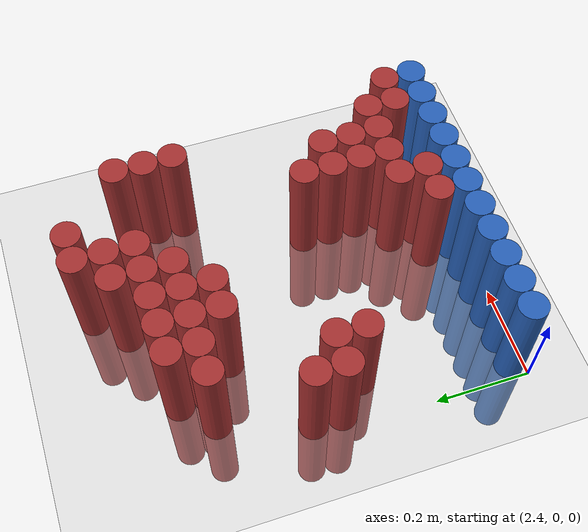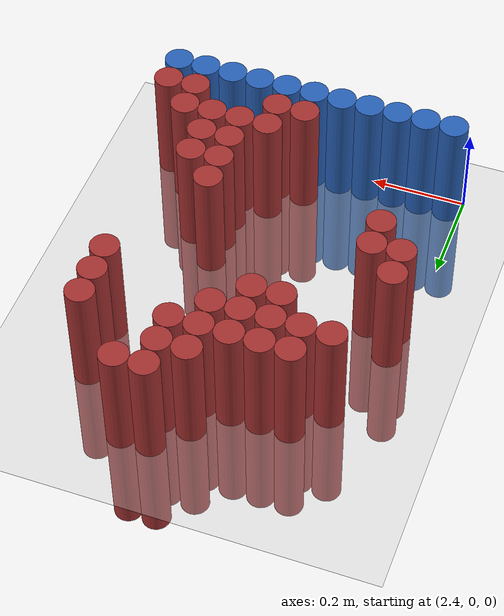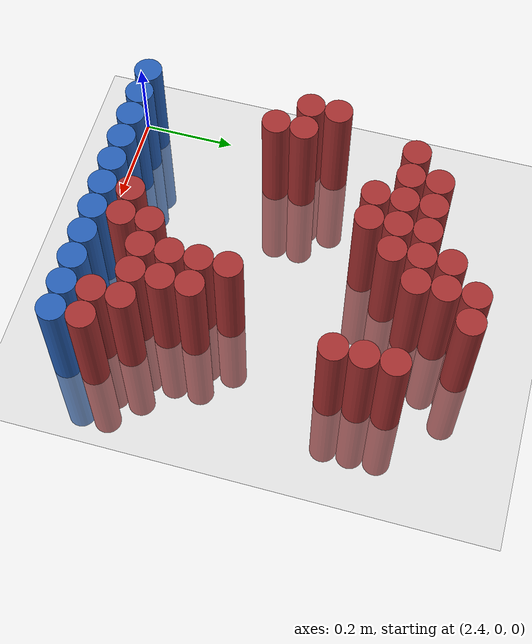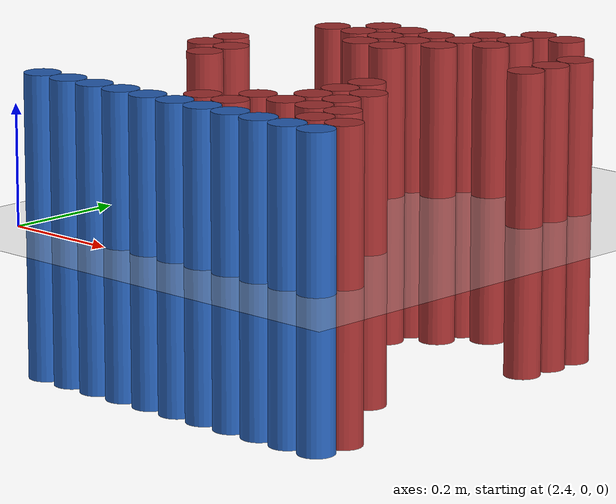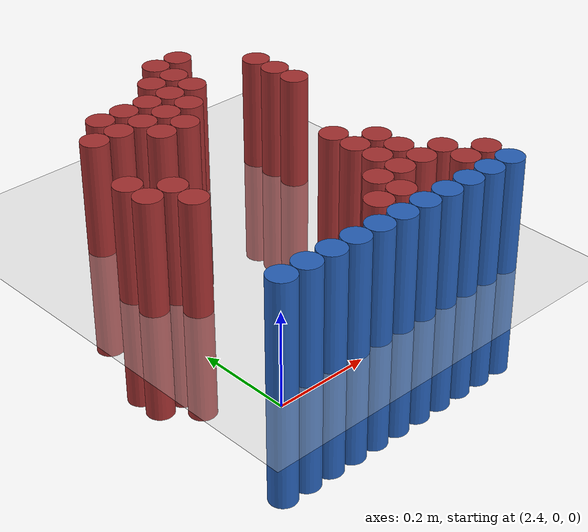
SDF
<sdf version="1.6">
 <world name="default">
  <model name="ground_plane">
   <static>1</static>
   <link name="link">
    <collision name="collision">
     <geometry><plane><normal>0 0 1</normal><size>100 100</size></plane></geometry>
     <surface><friction><ode><mu>100</mu><mu2>50</mu2></ode></friction></surface>
    </collision>
    <visual name="visual">
     <cast_shadows>0</cast_shadows>
     <geometry><plane><normal>0 0 1</normal><size>100 100</size></plane></geometry>
     <material>
      <script><uri>file://media/materials/scripts/gazebo.material</uri><name>Gazebo/Grey</name></script>
     </material>
    </visual>
   </link>
  </model>
  <model name="unit_cylinder_216">
   <static>1</static>
   <pose>2.790000 0.810000 0.000000 0.000000 0.000000 0.000000</pose>
   <link name="link">
    <inertial>
     <mass>1</mass>
     <inertia><ixx>0.145833</ixx><ixy>0</ixy><ixz>0</ixz><iyy>0.145833</iyy><iyz>0</iyz><izz>0.125</izz></inertia>
    </inertial>
    <collision name="collision">
     <geometry><cylinder><radius>0.030000</radius><length>0.5</length></cylinder></geometry>
    </collision>
    <visual name="visual">
     <geometry><cylinder><radius>0.030000</radius><length>0.5</length></cylinder></geometry>
     <material>
      <ambient>0.648000 0.192000 0.192000 1</ambient>
      <diffuse>0.648000 0.192000 0.192000 1</diffuse>
     </material>
     <material>
      <script><name>Gazebo/Grey</name><uri>file://media/materials/scripts/gazebo.material</uri></script>
     </material>
    </visual>
   </link>
  </model>
  <model name="unit_cylinder_217">
   <static>1</static>
   <pose>2.850000 0.810000 0.000000 0.000000 0.000000 0.000000</pose>
   <link name="link">
    <inertial>
     <mass>1</mass>
     <inertia><ixx>0.145833</ixx><ixy>0</ixy><ixz>0</ixz><iyy>0.145833</iyy><iyz>0</iyz><izz>0.125</izz></inertia>
    </inertial>
    <collision name="collision">
     <geometry><cylinder><radius>0.030000</radius><length>0.5</length></cylinder></geometry>
    </collision>
    <visual name="visual">
     <geometry><cylinder><radius>0.030000</radius><length>0.5</length></cylinder></geometry>
     <material>
      <ambient>0.648000 0.192000 0.192000 1</ambient>
      <diffuse>0.648000 0.192000 0.192000 1</diffuse>
     </material>
     <material>
      <script><name>Gazebo/Grey</name><uri>file://media/materials/scripts/gazebo.material</uri></script>
     </material>
    </visual>
   </link>
  </model>
  <model name="unit_cylinder_223">
   <static>1</static>
   <pose>2.730000 0.750000 0.000000 0.000000 0.000000 0.000000</pose>
   <link name="link">
    <inertial>
     <mass>1</mass>
     <inertia><ixx>0.145833</ixx><ixy>0</ixy><ixz>0</ixz><iyy>0.145833</iyy><iyz>0</iyz><izz>0.125</izz></inertia>
    </inertial>
    <collision name="collision">
     <geometry><cylinder><radius>0.030000</radius><length>0.5</length></cylinder></geometry>
    </collision>
    <visual name="visual">
     <geometry><cylinder><radius>0.030000</radius><length>0.5</length></cylinder></geometry>
     <material>
      <ambient>0.648000 0.192000 0.192000 1</ambient>
      <diffuse>0.648000 0.192000 0.192000 1</diffuse>
     </material>
     <material>
      <script><name>Gazebo/Grey</name><uri>file://media/materials/scripts/gazebo.material</uri></script>
     </material>
    </visual>
   </link>
  </model>
  <model name="unit_cylinder_224">
   <static>1</static>
   <pose>2.790000 0.750000 0.000000 0.000000 0.000000 0.000000</pose>
   <link name="link">
    <inertial>
     <mass>1</mass>
     <inertia><ixx>0.145833</ixx><ixy>0</ixy><ixz>0</ixz><iyy>0.145833</iyy><iyz>0</iyz><izz>0.125</izz></inertia>
    </inertial>
    <collision name="collision">
     <geometry><cylinder><radius>0.030000</radius><length>0.5</length></cylinder></geometry>
    </collision>
    <visual name="visual">
     <geometry><cylinder><radius>0.030000</radius><length>0.5</length></cylinder></geometry>
     <material>
      <ambient>0.648000 0.192000 0.192000 1</ambient>
      <diffuse>0.648000 0.192000 0.192000 1</diffuse>
     </material>
     <material>
      <script><name>Gazebo/Grey</name><uri>file://media/materials/scripts/gazebo.material</uri></script>
     </material>
    </visual>
   </link>
  </model>
  <model name="unit_cylinder_231">
   <static>1</static>
   <pose>2.550000 0.690000 0.000000 0.000000 0.000000 0.000000</pose>
   <link name="link">
    <inertial>
     <mass>1</mass>
     <inertia><ixx>0.145833</ixx><ixy>0</ixy><ixz>0</ixz><iyy>0.145833</iyy><iyz>0</iyz><izz>0.125</izz></inertia>
    </inertial>
    <collision name="collision">
     <geometry><cylinder><radius>0.030000</radius><length>0.5</length></cylinder></geometry>
    </collision>
    <visual name="visual">
     <geometry><cylinder><radius>0.030000</radius><length>0.5</length></cylinder></geometry>
     <material>
      <ambient>0.648000 0.192000 0.192000 1</ambient>
      <diffuse>0.648000 0.192000 0.192000 1</diffuse>
     </material>
     <material>
      <script><name>Gazebo/Grey</name><uri>file://media/materials/scripts/gazebo.material</uri></script>
     </material>
    </visual>
   </link>
  </model>
  <model name="unit_cylinder_232">
   <static>1</static>
   <pose>2.610000 0.690000 0.000000 0.000000 0.000000 0.000000</pose>
   <link name="link">
    <inertial>
     <mass>1</mass>
     <inertia><ixx>0.145833</ixx><ixy>0</ixy><ixz>0</ixz><iyy>0.145833</iyy><iyz>0</iyz><izz>0.125</izz></inertia>
    </inertial>
    <collision name="collision">
     <geometry><cylinder><radius>0.030000</radius><length>0.5</length></cylinder></geometry>
    </collision>
    <visual name="visual">
     <geometry><cylinder><radius>0.030000</radius><length>0.5</length></cylinder></geometry>
     <material>
      <ambient>0.648000 0.192000 0.192000 1</ambient>
      <diffuse>0.648000 0.192000 0.192000 1</diffuse>
     </material>
     <material>
      <script><name>Gazebo/Grey</name><uri>file://media/materials/scripts/gazebo.material</uri></script>
     </material>
    </visual>
   </link>
  </model>
  <model name="unit_cylinder_233">
   <static>1</static>
   <pose>2.670000 0.690000 0.000000 0.000000 0.000000 0.000000</pose>
   <link name="link">
    <inertial>
     <mass>1</mass>
     <inertia><ixx>0.145833</ixx><ixy>0</ixy><ixz>0</ixz><iyy>0.145833</iyy><iyz>0</iyz><izz>0.125</izz></inertia>
    </inertial>
    <collision name="collision">
     <geometry><cylinder><radius>0.030000</radius><length>0.5</length></cylinder></geometry>
    </collision>
    <visual name="visual">
     <geometry><cylinder><radius>0.030000</radius><length>0.5</length></cylinder></geometry>
     <material>
      <ambient>0.648000 0.192000 0.192000 1</ambient>
      <diffuse>0.648000 0.192000 0.192000 1</diffuse>
     </material>
     <material>
      <script><name>Gazebo/Grey</name><uri>file://media/materials/scripts/gazebo.material</uri></script>
     </material>
    </visual>
   </link>
  </model>
  <model name="unit_cylinder_234">
   <static>1</static>
   <pose>2.730000 0.690000 0.000000 0.000000 0.000000 0.000000</pose>
   <link name="link">
    <inertial>
     <mass>1</mass>
     <inertia><ixx>0.145833</ixx><ixy>0</ixy><ixz>0</ixz><iyy>0.145833</iyy><iyz>0</iyz><izz>0.125</izz></inertia>
    </inertial>
    <collision name="collision">
     <geometry><cylinder><radius>0.030000</radius><length>0.5</length></cylinder></geometry>
    </collision>
    <visual name="visual">
     <geometry><cylinder><radius>0.030000</radius><length>0.5</length></cylinder></geometry>
     <material>
      <ambient>0.648000 0.192000 0.192000 1</ambient>
      <diffuse>0.648000 0.192000 0.192000 1</diffuse>
     </material>
     <material>
      <script><name>Gazebo/Grey</name><uri>file://media/materials/scripts/gazebo.material</uri></script>
     </material>
    </visual>
   </link>
  </model>
  <model name="unit_cylinder_235">
   <static>1</static>
   <pose>2.790000 0.690000 0.000000 0.000000 0.000000 0.000000</pose>
   <link name="link">
    <inertial>
     <mass>1</mass>
     <inertia><ixx>0.145833</ixx><ixy>0</ixy><ixz>0</ixz><iyy>0.145833</iyy><iyz>0</iyz><izz>0.125</izz></inertia>
    </inertial>
    <collision name="collision">
     <geometry><cylinder><radius>0.030000</radius><length>0.5</length></cylinder></geometry>
    </collision>
    <visual name="visual">
     <geometry><cylinder><radius>0.030000</radius><length>0.5</length></cylinder></geometry>
     <material>
      <ambient>0.648000 0.192000 0.192000 1</ambient>
      <diffuse>0.648000 0.192000 0.192000 1</diffuse>
     </material>
     <material>
      <script><name>Gazebo/Grey</name><uri>file://media/materials/scripts/gazebo.material</uri></script>
     </material>
    </visual>
   </link>
  </model>
  <model name="unit_cylinder_236">
   <static>1</static>
   <pose>2.970000 0.690000 0.000000 0.000000 0.000000 0.000000</pose>
   <link name="link">
    <inertial>
     <mass>1</mass>
     <inertia><ixx>0.145833</ixx><ixy>0</ixy><ixz>0</ixz><iyy>0.145833</iyy><iyz>0</iyz><izz>0.125</izz></inertia>
    </inertial>
    <collision name="collision">
     <geometry><cylinder><radius>0.030000</radius><length>0.5</length></cylinder></geometry>
    </collision>
    <visual name="visual">
     <geometry><cylinder><radius>0.030000</radius><length>0.5</length></cylinder></geometry>
     <material>
      <ambient>0.648000 0.192000 0.192000 1</ambient>
      <diffuse>0.648000 0.192000 0.192000 1</diffuse>
     </material>
     <material>
      <script><name>Gazebo/Grey</name><uri>file://media/materials/scripts/gazebo.material</uri></script>
     </material>
    </visual>
   </link>
  </model>
  <model name="unit_cylinder_239">
   <static>1</static>
   <pose>2.490000 0.630000 0.000000 0.000000 0.000000 0.000000</pose>
   <link name="link">
    <inertial>
     <mass>1</mass>
     <inertia><ixx>0.145833</ixx><ixy>0</ixy><ixz>0</ixz><iyy>0.145833</iyy><iyz>0</iyz><izz>0.125</izz></inertia>
    </inertial>
    <collision name="collision">
     <geometry><cylinder><radius>0.030000</radius><length>0.5</length></cylinder></geometry>
    </collision>
    <visual name="visual">
     <geometry><cylinder><radius>0.030000</radius><length>0.5</length></cylinder></geometry>
     <material>
      <ambient>0.648000 0.192000 0.192000 1</ambient>
      <diffuse>0.648000 0.192000 0.192000 1</diffuse>
     </material>
     <material>
      <script><name>Gazebo/Grey</name><uri>file://media/materials/scripts/gazebo.material</uri></script>
     </material>
    </visual>
   </link>
  </model>
  <model name="unit_cylinder_240">
   <static>1</static>
   <pose>2.550000 0.630000 0.000000 0.000000 0.000000 0.000000</pose>
   <link name="link">
    <inertial>
     <mass>1</mass>
     <inertia><ixx>0.145833</ixx><ixy>0</ixy><ixz>0</ixz><iyy>0.145833</iyy><iyz>0</iyz><izz>0.125</izz></inertia>
    </inertial>
    <collision name="collision">
     <geometry><cylinder><radius>0.030000</radius><length>0.5</length></cylinder></geometry>
    </collision>
    <visual name="visual">
     <geometry><cylinder><radius>0.030000</radius><length>0.5</length></cylinder></geometry>
     <material>
      <ambient>0.648000 0.192000 0.192000 1</ambient>
      <diffuse>0.648000 0.192000 0.192000 1</diffuse>
     </material>
     <material>
      <script><name>Gazebo/Grey</name><uri>file://media/materials/scripts/gazebo.material</uri></script>
     </material>
    </visual>
   </link>
  </model>
  <model name="unit_cylinder_241">
   <static>1</static>
   <pose>2.610000 0.630000 0.000000 0.000000 0.000000 0.000000</pose>
   <link name="link">
    <inertial>
     <mass>1</mass>
     <inertia><ixx>0.145833</ixx><ixy>0</ixy><ixz>0</ixz><iyy>0.145833</iyy><iyz>0</iyz><izz>0.125</izz></inertia>
    </inertial>
    <collision name="collision">
     <geometry><cylinder><radius>0.030000</radius><length>0.5</length></cylinder></geometry>
    </collision>
    <visual name="visual">
     <geometry><cylinder><radius>0.030000</radius><length>0.5</length></cylinder></geometry>
     <material>
      <ambient>0.648000 0.192000 0.192000 1</ambient>
      <diffuse>0.648000 0.192000 0.192000 1</diffuse>
     </material>
     <material>
      <script><name>Gazebo/Grey</name><uri>file://media/materials/scripts/gazebo.material</uri></script>
     </material>
    </visual>
   </link>
  </model>
  <model name="unit_cylinder_242">
   <static>1</static>
   <pose>2.670000 0.630000 0.000000 0.000000 0.000000 0.000000</pose>
   <link name="link">
    <inertial>
     <mass>1</mass>
     <inertia><ixx>0.145833</ixx><ixy>0</ixy><ixz>0</ixz><iyy>0.145833</iyy><iyz>0</iyz><izz>0.125</izz></inertia>
    </inertial>
    <collision name="collision">
     <geometry><cylinder><radius>0.030000</radius><length>0.5</length></cylinder></geometry>
    </collision>
    <visual name="visual">
     <geometry><cylinder><radius>0.030000</radius><length>0.5</length></cylinder></geometry>
     <material>
      <ambient>0.648000 0.192000 0.192000 1</ambient>
      <diffuse>0.648000 0.192000 0.192000 1</diffuse>
     </material>
     <material>
      <script><name>Gazebo/Grey</name><uri>file://media/materials/scripts/gazebo.material</uri></script>
     </material>
    </visual>
   </link>
  </model>
  <model name="unit_cylinder_243">
   <static>1</static>
   <pose>2.730000 0.630000 0.000000 0.000000 0.000000 0.000000</pose>
   <link name="link">
    <inertial>
     <mass>1</mass>
     <inertia><ixx>0.145833</ixx><ixy>0</ixy><ixz>0</ixz><iyy>0.145833</iyy><iyz>0</iyz><izz>0.125</izz></inertia>
    </inertial>
    <collision name="collision">
     <geometry><cylinder><radius>0.030000</radius><length>0.5</length></cylinder></geometry>
    </collision>
    <visual name="visual">
     <geometry><cylinder><radius>0.030000</radius><length>0.5</length></cylinder></geometry>
     <material>
      <ambient>0.648000 0.192000 0.192000 1</ambient>
      <diffuse>0.648000 0.192000 0.192000 1</diffuse>
     </material>
     <material>
      <script><name>Gazebo/Grey</name><uri>file://media/materials/scripts/gazebo.material</uri></script>
     </material>
    </visual>
   </link>
  </model>
  <model name="unit_cylinder_244">
   <static>1</static>
   <pose>2.970000 0.630000 0.000000 0.000000 0.000000 0.000000</pose>
   <link name="link">
    <inertial>
     <mass>1</mass>
     <inertia><ixx>0.145833</ixx><ixy>0</ixy><ixz>0</ixz><iyy>0.145833</iyy><iyz>0</iyz><izz>0.125</izz></inertia>
    </inertial>
    <collision name="collision">
     <geometry><cylinder><radius>0.030000</radius><length>0.5</length></cylinder></geometry>
    </collision>
    <visual name="visual">
     <geometry><cylinder><radius>0.030000</radius><length>0.5</length></cylinder></geometry>
     <material>
      <ambient>0.648000 0.192000 0.192000 1</ambient>
      <diffuse>0.648000 0.192000 0.192000 1</diffuse>
     </material>
     <material>
      <script><name>Gazebo/Grey</name><uri>file://media/materials/scripts/gazebo.material</uri></script>
     </material>
    </visual>
   </link>
  </model>
  <model name="unit_cylinder_246">
   <static>1</static>
   <pose>2.610000 0.570000 0.000000 0.000000 0.000000 0.000000</pose>
   <link name="link">
    <inertial>
     <mass>1</mass>
     <inertia><ixx>0.145833</ixx><ixy>0</ixy><ixz>0</ixz><iyy>0.145833</iyy><iyz>0</iyz><izz>0.125</izz></inertia>
    </inertial>
    <collision name="collision">
     <geometry><cylinder><radius>0.030000</radius><length>0.5</length></cylinder></geometry>
    </collision>
    <visual name="visual">
     <geometry><cylinder><radius>0.030000</radius><length>0.5</length></cylinder></geometry>
     <material>
      <ambient>0.648000 0.192000 0.192000 1</ambient>
      <diffuse>0.648000 0.192000 0.192000 1</diffuse>
     </material>
     <material>
      <script><name>Gazebo/Grey</name><uri>file://media/materials/scripts/gazebo.material</uri></script>
     </material>
    </visual>
   </link>
  </model>
  <model name="unit_cylinder_247">
   <static>1</static>
   <pose>2.670000 0.570000 0.000000 0.000000 0.000000 0.000000</pose>
   <link name="link">
    <inertial>
     <mass>1</mass>
     <inertia><ixx>0.145833</ixx><ixy>0</ixy><ixz>0</ixz><iyy>0.145833</iyy><iyz>0</iyz><izz>0.125</izz></inertia>
    </inertial>
    <collision name="collision">
     <geometry><cylinder><radius>0.030000</radius><length>0.5</length></cylinder></geometry>
    </collision>
    <visual name="visual">
     <geometry><cylinder><radius>0.030000</radius><length>0.5</length></cylinder></geometry>
     <material>
      <ambient>0.648000 0.192000 0.192000 1</ambient>
      <diffuse>0.648000 0.192000 0.192000 1</diffuse>
     </material>
     <material>
      <script><name>Gazebo/Grey</name><uri>file://media/materials/scripts/gazebo.material</uri></script>
     </material>
    </visual>
   </link>
  </model>
  <model name="unit_cylinder_248">
   <static>1</static>
   <pose>2.970000 0.570000 0.000000 0.000000 0.000000 0.000000</pose>
   <link name="link">
    <inertial>
     <mass>1</mass>
     <inertia><ixx>0.145833</ixx><ixy>0</ixy><ixz>0</ixz><iyy>0.145833</iyy><iyz>0</iyz><izz>0.125</izz></inertia>
    </inertial>
    <collision name="collision">
     <geometry><cylinder><radius>0.030000</radius><length>0.5</length></cylinder></geometry>
    </collision>
    <visual name="visual">
     <geometry><cylinder><radius>0.030000</radius><length>0.5</length></cylinder></geometry>
     <material>
      <ambient>0.648000 0.192000 0.192000 1</ambient>
      <diffuse>0.648000 0.192000 0.192000 1</diffuse>
     </material>
     <material>
      <script><name>Gazebo/Grey</name><uri>file://media/materials/scripts/gazebo.material</uri></script>
     </material>
    </visual>
   </link>
  </model>
  <model name="unit_cylinder_255">
   <static>1</static>
   <pose>2.430000 0.450000 0.000000 0.000000 0.000000 0.000000</pose>
   <link name="link">
    <inertial>
     <mass>1</mass>
     <inertia><ixx>0.145833</ixx><ixy>0</ixy><ixz>0</ixz><iyy>0.145833</iyy><iyz>0</iyz><izz>0.125</izz></inertia>
    </inertial>
    <collision name="collision">
     <geometry><cylinder><radius>0.030000</radius><length>0.5</length></cylinder></geometry>
    </collision>
    <visual name="visual">
     <geometry><cylinder><radius>0.030000</radius><length>0.5</length></cylinder></geometry>
     <material>
      <ambient>0.648000 0.192000 0.192000 1</ambient>
      <diffuse>0.648000 0.192000 0.192000 1</diffuse>
     </material>
     <material>
      <script><name>Gazebo/Grey</name><uri>file://media/materials/scripts/gazebo.material</uri></script>
     </material>
    </visual>
   </link>
  </model>
  <model name="unit_cylinder_256">
   <static>1</static>
   <pose>2.430000 0.390000 0.000000 0.000000 0.000000 0.000000</pose>
   <link name="link">
    <inertial>
     <mass>1</mass>
     <inertia><ixx>0.145833</ixx><ixy>0</ixy><ixz>0</ixz><iyy>0.145833</iyy><iyz>0</iyz><izz>0.125</izz></inertia>
    </inertial>
    <collision name="collision">
     <geometry><cylinder><radius>0.030000</radius><length>0.5</length></cylinder></geometry>
    </collision>
    <visual name="visual">
     <geometry><cylinder><radius>0.030000</radius><length>0.5</length></cylinder></geometry>
     <material>
      <ambient>0.648000 0.192000 0.192000 1</ambient>
      <diffuse>0.648000 0.192000 0.192000 1</diffuse>
     </material>
     <material>
      <script><name>Gazebo/Grey</name><uri>file://media/materials/scripts/gazebo.material</uri></script>
     </material>
    </visual>
   </link>
  </model>
  <model name="unit_cylinder_257">
   <static>1</static>
   <pose>2.490000 0.390000 0.000000 0.000000 0.000000 0.000000</pose>
   <link name="link">
    <inertial>
     <mass>1</mass>
     <inertia><ixx>0.145833</ixx><ixy>0</ixy><ixz>0</ixz><iyy>0.145833</iyy><iyz>0</iyz><izz>0.125</izz></inertia>
    </inertial>
    <collision name="collision">
     <geometry><cylinder><radius>0.030000</radius><length>0.5</length></cylinder></geometry>
    </collision>
    <visual name="visual">
     <geometry><cylinder><radius>0.030000</radius><length>0.5</length></cylinder></geometry>
     <material>
      <ambient>0.648000 0.192000 0.192000 1</ambient>
      <diffuse>0.648000 0.192000 0.192000 1</diffuse>
     </material>
     <material>
      <script><name>Gazebo/Grey</name><uri>file://media/materials/scripts/gazebo.material</uri></script>
     </material>
    </visual>
   </link>
  </model>
  <model name="unit_cylinder_259">
   <static>1</static>
   <pose>2.490000 0.330000 0.000000 0.000000 0.000000 0.000000</pose>
   <link name="link">
    <inertial>
     <mass>1</mass>
     <inertia><ixx>0.145833</ixx><ixy>0</ixy><ixz>0</ixz><iyy>0.145833</iyy><iyz>0</iyz><izz>0.125</izz></inertia>
    </inertial>
    <collision name="collision">
     <geometry><cylinder><radius>0.030000</radius><length>0.5</length></cylinder></geometry>
    </collision>
    <visual name="visual">
     <geometry><cylinder><radius>0.030000</radius><length>0.5</length></cylinder></geometry>
     <material>
      <ambient>0.648000 0.192000 0.192000 1</ambient>
      <diffuse>0.648000 0.192000 0.192000 1</diffuse>
     </material>
     <material>
      <script><name>Gazebo/Grey</name><uri>file://media/materials/scripts/gazebo.material</uri></script>
     </material>
    </visual>
   </link>
  </model>
  <model name="unit_cylinder_260">
   <static>1</static>
   <pose>2.850000 0.330000 0.000000 0.000000 0.000000 0.000000</pose>
   <link name="link">
    <inertial>
     <mass>1</mass>
     <inertia><ixx>0.145833</ixx><ixy>0</ixy><ixz>0</ixz><iyy>0.145833</iyy><iyz>0</iyz><izz>0.125</izz></inertia>
    </inertial>
    <collision name="collision">
     <geometry><cylinder><radius>0.030000</radius><length>0.5</length></cylinder></geometry>
    </collision>
    <visual name="visual">
     <geometry><cylinder><radius>0.030000</radius><length>0.5</length></cylinder></geometry>
     <material>
      <ambient>0.648000 0.192000 0.192000 1</ambient>
      <diffuse>0.648000 0.192000 0.192000 1</diffuse>
     </material>
     <material>
      <script><name>Gazebo/Grey</name><uri>file://media/materials/scripts/gazebo.material</uri></script>
     </material>
    </visual>
   </link>
  </model>
  <model name="unit_cylinder_265">
   <static>1</static>
   <pose>2.850000 0.270000 0.000000 0.000000 0.000000 0.000000</pose>
   <link name="link">
    <inertial>
     <mass>1</mass>
     <inertia><ixx>0.145833</ixx><ixy>0</ixy><ixz>0</ixz><iyy>0.145833</iyy><iyz>0</iyz><izz>0.125</izz></inertia>
    </inertial>
    <collision name="collision">
     <geometry><cylinder><radius>0.030000</radius><length>0.5</length></cylinder></geometry>
    </collision>
    <visual name="visual">
     <geometry><cylinder><radius>0.030000</radius><length>0.5</length></cylinder></geometry>
     <material>
      <ambient>0.648000 0.192000 0.192000 1</ambient>
      <diffuse>0.648000 0.192000 0.192000 1</diffuse>
     </material>
     <material>
      <script><name>Gazebo/Grey</name><uri>file://media/materials/scripts/gazebo.material</uri></script>
     </material>
    </visual>
   </link>
  </model>
  <model name="unit_cylinder_266">
   <static>1</static>
   <pose>2.910000 0.270000 0.000000 0.000000 0.000000 0.000000</pose>
   <link name="link">
    <inertial>
     <mass>1</mass>
     <inertia><ixx>0.145833</ixx><ixy>0</ixy><ixz>0</ixz><iyy>0.145833</iyy><iyz>0</iyz><izz>0.125</izz></inertia>
    </inertial>
    <collision name="collision">
     <geometry><cylinder><radius>0.030000</radius><length>0.5</length></cylinder></geometry>
    </collision>
    <visual name="visual">
     <geometry><cylinder><radius>0.030000</radius><length>0.5</length></cylinder></geometry>
     <material>
      <ambient>0.648000 0.192000 0.192000 1</ambient>
      <diffuse>0.648000 0.192000 0.192000 1</diffuse>
     </material>
     <material>
      <script><name>Gazebo/Grey</name><uri>file://media/materials/scripts/gazebo.material</uri></script>
     </material>
    </visual>
   </link>
  </model>
  <model name="unit_cylinder_274">
   <static>1</static>
   <pose>2.850000 0.210000 0.000000 0.000000 0.000000 0.000000</pose>
   <link name="link">
    <inertial>
     <mass>1</mass>
     <inertia><ixx>0.145833</ixx><ixy>0</ixy><ixz>0</ixz><iyy>0.145833</iyy><iyz>0</iyz><izz>0.125</izz></inertia>
    </inertial>
    <collision name="collision">
     <geometry><cylinder><radius>0.030000</radius><length>0.5</length></cylinder></geometry>
    </collision>
    <visual name="visual">
     <geometry><cylinder><radius>0.030000</radius><length>0.5</length></cylinder></geometry>
     <material>
      <ambient>0.648000 0.192000 0.192000 1</ambient>
      <diffuse>0.648000 0.192000 0.192000 1</diffuse>
     </material>
     <material>
      <script><name>Gazebo/Grey</name><uri>file://media/materials/scripts/gazebo.material</uri></script>
     </material>
    </visual>
   </link>
  </model>
  <model name="unit_cylinder_275">
   <static>1</static>
   <pose>2.910000 0.210000 0.000000 0.000000 0.000000 0.000000</pose>
   <link name="link">
    <inertial>
     <mass>1</mass>
     <inertia><ixx>0.145833</ixx><ixy>0</ixy><ixz>0</ixz><iyy>0.145833</iyy><iyz>0</iyz><izz>0.125</izz></inertia>
    </inertial>
    <collision name="collision">
     <geometry><cylinder><radius>0.030000</radius><length>0.5</length></cylinder></geometry>
    </collision>
    <visual name="visual">
     <geometry><cylinder><radius>0.030000</radius><length>0.5</length></cylinder></geometry>
     <material>
      <ambient>0.648000 0.192000 0.192000 1</ambient>
      <diffuse>0.648000 0.192000 0.192000 1</diffuse>
     </material>
     <material>
      <script><name>Gazebo/Grey</name><uri>file://media/materials/scripts/gazebo.material</uri></script>
     </material>
    </visual>
   </link>
  </model>
  <model name="unit_cylinder_282">
   <static>1</static>
   <pose>2.790000 0.150000 0.000000 0.000000 0.000000 0.000000</pose>
   <link name="link">
    <inertial>
     <mass>1</mass>
     <inertia><ixx>0.145833</ixx><ixy>0</ixy><ixz>0</ixz><iyy>0.145833</iyy><iyz>0</iyz><izz>0.125</izz></inertia>
    </inertial>
    <collision name="collision">
     <geometry><cylinder><radius>0.030000</radius><length>0.5</length></cylinder></geometry>
    </collision>
    <visual name="visual">
     <geometry><cylinder><radius>0.030000</radius><length>0.5</length></cylinder></geometry>
     <material>
      <ambient>0.648000 0.192000 0.192000 1</ambient>
      <diffuse>0.648000 0.192000 0.192000 1</diffuse>
     </material>
     <material>
      <script><name>Gazebo/Grey</name><uri>file://media/materials/scripts/gazebo.material</uri></script>
     </material>
    </visual>
   </link>
  </model>
  <model name="unit_cylinder_283">
   <static>1</static>
   <pose>2.850000 0.150000 0.000000 0.000000 0.000000 0.000000</pose>
   <link name="link">
    <inertial>
     <mass>1</mass>
     <inertia><ixx>0.145833</ixx><ixy>0</ixy><ixz>0</ixz><iyy>0.145833</iyy><iyz>0</iyz><izz>0.125</izz></inertia>
    </inertial>
    <collision name="collision">
     <geometry><cylinder><radius>0.030000</radius><length>0.5</length></cylinder></geometry>
    </collision>
    <visual name="visual">
     <geometry><cylinder><radius>0.030000</radius><length>0.5</length></cylinder></geometry>
     <material>
      <ambient>0.648000 0.192000 0.192000 1</ambient>
      <diffuse>0.648000 0.192000 0.192000 1</diffuse>
     </material>
     <material>
      <script><name>Gazebo/Grey</name><uri>file://media/materials/scripts/gazebo.material</uri></script>
     </material>
    </visual>
   </link>
  </model>
  <model name="unit_cylinder_284">
   <static>1</static>
   <pose>2.910000 0.150000 0.000000 0.000000 0.000000 0.000000</pose>
   <link name="link">
    <inertial>
     <mass>1</mass>
     <inertia><ixx>0.145833</ixx><ixy>0</ixy><ixz>0</ixz><iyy>0.145833</iyy><iyz>0</iyz><izz>0.125</izz></inertia>
    </inertial>
    <collision name="collision">
     <geometry><cylinder><radius>0.030000</radius><length>0.5</length></cylinder></geometry>
    </collision>
    <visual name="visual">
     <geometry><cylinder><radius>0.030000</radius><length>0.5</length></cylinder></geometry>
     <material>
      <ambient>0.648000 0.192000 0.192000 1</ambient>
      <diffuse>0.648000 0.192000 0.192000 1</diffuse>
     </material>
     <material>
      <script><name>Gazebo/Grey</name><uri>file://media/materials/scripts/gazebo.material</uri></script>
     </material>
    </visual>
   </link>
  </model>
  <model name="unit_cylinder_285">
   <static>1</static>
   <pose>2.970000 0.150000 0.000000 0.000000 0.000000 0.000000</pose>
   <link name="link">
    <inertial>
     <mass>1</mass>
     <inertia><ixx>0.145833</ixx><ixy>0</ixy><ixz>0</ixz><iyy>0.145833</iyy><iyz>0</iyz><izz>0.125</izz></inertia>
    </inertial>
    <collision name="collision">
     <geometry><cylinder><radius>0.030000</radius><length>0.5</length></cylinder></geometry>
    </collision>
    <visual name="visual">
     <geometry><cylinder><radius>0.030000</radius><length>0.5</length></cylinder></geometry>
     <material>
      <ambient>0.648000 0.192000 0.192000 1</ambient>
      <diffuse>0.648000 0.192000 0.192000 1</diffuse>
     </material>
     <material>
      <script><name>Gazebo/Grey</name><uri>file://media/materials/scripts/gazebo.material</uri></script>
     </material>
    </visual>
   </link>
  </model>
  <model name="unit_cylinder_292">
   <static>1</static>
   <pose>2.730000 0.090000 0.000000 0.000000 0.000000 0.000000</pose>
   <link name="link">
    <inertial>
     <mass>1</mass>
     <inertia><ixx>0.145833</ixx><ixy>0</ixy><ixz>0</ixz><iyy>0.145833</iyy><iyz>0</iyz><izz>0.125</izz></inertia>
    </inertial>
    <collision name="collision">
     <geometry><cylinder><radius>0.030000</radius><length>0.5</length></cylinder></geometry>
    </collision>
    <visual name="visual">
     <geometry><cylinder><radius>0.030000</radius><length>0.5</length></cylinder></geometry>
     <material>
      <ambient>0.648000 0.192000 0.192000 1</ambient>
      <diffuse>0.648000 0.192000 0.192000 1</diffuse>
     </material>
     <material>
      <script><name>Gazebo/Grey</name><uri>file://media/materials/scripts/gazebo.material</uri></script>
     </material>
    </visual>
   </link>
  </model>
  <model name="unit_cylinder_293">
   <static>1</static>
   <pose>2.790000 0.090000 0.000000 0.000000 0.000000 0.000000</pose>
   <link name="link">
    <inertial>
     <mass>1</mass>
     <inertia><ixx>0.145833</ixx><ixy>0</ixy><ixz>0</ixz><iyy>0.145833</iyy><iyz>0</iyz><izz>0.125</izz></inertia>
    </inertial>
    <collision name="collision">
     <geometry><cylinder><radius>0.030000</radius><length>0.5</length></cylinder></geometry>
    </collision>
    <visual name="visual">
     <geometry><cylinder><radius>0.030000</radius><length>0.5</length></cylinder></geometry>
     <material>
      <ambient>0.648000 0.192000 0.192000 1</ambient>
      <diffuse>0.648000 0.192000 0.192000 1</diffuse>
     </material>
     <material>
      <script><name>Gazebo/Grey</name><uri>file://media/materials/scripts/gazebo.material</uri></script>
     </material>
    </visual>
   </link>
  </model>
  <model name="unit_cylinder_294">
   <static>1</static>
   <pose>2.970000 0.090000 0.000000 0.000000 0.000000 0.000000</pose>
   <link name="link">
    <inertial>
     <mass>1</mass>
     <inertia><ixx>0.145833</ixx><ixy>0</ixy><ixz>0</ixz><iyy>0.145833</iyy><iyz>0</iyz><izz>0.125</izz></inertia>
    </inertial>
    <collision name="collision">
     <geometry><cylinder><radius>0.030000</radius><length>0.5</length></cylinder></geometry>
    </collision>
    <visual name="visual">
     <geometry><cylinder><radius>0.030000</radius><length>0.5</length></cylinder></geometry>
     <material>
      <ambient>0.648000 0.192000 0.192000 1</ambient>
      <diffuse>0.648000 0.192000 0.192000 1</diffuse>
     </material>
     <material>
      <script><name>Gazebo/Grey</name><uri>file://media/materials/scripts/gazebo.material</uri></script>
     </material>
    </visual>
   </link>
  </model>
  <model name="unit_cylinder_295">
   <static>1</static>
   <pose>3.030000 0.090000 0.000000 0.000000 0.000000 0.000000</pose>
   <link name="link">
    <inertial>
     <mass>1</mass>
     <inertia><ixx>0.145833</ixx><ixy>0</ixy><ixz>0</ixz><iyy>0.145833</iyy><iyz>0</iyz><izz>0.125</izz></inertia>
    </inertial>
    <collision name="collision">
     <geometry><cylinder><radius>0.030000</radius><length>0.5</length></cylinder></geometry>
    </collision>
    <visual name="visual">
     <geometry><cylinder><radius>0.030000</radius><length>0.5</length></cylinder></geometry>
     <material>
      <ambient>0.648000 0.192000 0.192000 1</ambient>
      <diffuse>0.648000 0.192000 0.192000 1</diffuse>
     </material>
     <material>
      <script><name>Gazebo/Grey</name><uri>file://media/materials/scripts/gazebo.material</uri></script>
     </material>
    </visual>
   </link>
  </model>
  <model name="unit_cylinder_307">
   <static>1</static>
   <pose>2.430000 0.030000 0.000000 0.000000 0.000000 0.000000</pose>
   <link name="link">
    <inertial>
     <mass>1</mass>
     <inertia><ixx>0.145833</ixx><ixy>0</ixy><ixz>0</ixz><iyy>0.145833</iyy><iyz>0</iyz><izz>0.125</izz></inertia>
    </inertial>
    <collision name="collision">
     <geometry><cylinder><radius>0.030000</radius><length>0.5</length></cylinder></geometry>
    </collision>
    <visual name="visual">
     <geometry><cylinder><radius>0.030000</radius><length>0.5</length></cylinder></geometry>
     <material>
      <ambient>0.152000 0.379000 0.720000 1</ambient>
      <diffuse>0.152000 0.379000 0.720000 1</diffuse>
     </material>
     <material>
      <script><name>Gazebo/Grey</name><uri>file://media/materials/scripts/gazebo.material</uri></script>
     </material>
    </visual>
   </link>
  </model>
  <model name="unit_cylinder_308">
   <static>1</static>
   <pose>2.490000 0.030000 0.000000 0.000000 0.000000 0.000000</pose>
   <link name="link">
    <inertial>
     <mass>1</mass>
     <inertia><ixx>0.145833</ixx><ixy>0</ixy><ixz>0</ixz><iyy>0.145833</iyy><iyz>0</iyz><izz>0.125</izz></inertia>
    </inertial>
    <collision name="collision">
     <geometry><cylinder><radius>0.030000</radius><length>0.5</length></cylinder></geometry>
    </collision>
    <visual name="visual">
     <geometry><cylinder><radius>0.030000</radius><length>0.5</length></cylinder></geometry>
     <material>
      <ambient>0.152000 0.379000 0.720000 1</ambient>
      <diffuse>0.152000 0.379000 0.720000 1</diffuse>
     </material>
     <material>
      <script><name>Gazebo/Grey</name><uri>file://media/materials/scripts/gazebo.material</uri></script>
     </material>
    </visual>
   </link>
  </model>
  <model name="unit_cylinder_309">
   <static>1</static>
   <pose>2.550000 0.030000 0.000000 0.000000 0.000000 0.000000</pose>
   <link name="link">
    <inertial>
     <mass>1</mass>
     <inertia><ixx>0.145833</ixx><ixy>0</ixy><ixz>0</ixz><iyy>0.145833</iyy><iyz>0</iyz><izz>0.125</izz></inertia>
    </inertial>
    <collision name="collision">
     <geometry><cylinder><radius>0.030000</radius><length>0.5</length></cylinder></geometry>
    </collision>
    <visual name="visual">
     <geometry><cylinder><radius>0.030000</radius><length>0.5</length></cylinder></geometry>
     <material>
      <ambient>0.152000 0.379000 0.720000 1</ambient>
      <diffuse>0.152000 0.379000 0.720000 1</diffuse>
     </material>
     <material>
      <script><name>Gazebo/Grey</name><uri>file://media/materials/scripts/gazebo.material</uri></script>
     </material>
    </visual>
   </link>
  </model>
  <model name="unit_cylinder_310">
   <static>1</static>
   <pose>2.610000 0.030000 0.000000 0.000000 0.000000 0.000000</pose>
   <link name="link">
    <inertial>
     <mass>1</mass>
     <inertia><ixx>0.145833</ixx><ixy>0</ixy><ixz>0</ixz><iyy>0.145833</iyy><iyz>0</iyz><izz>0.125</izz></inertia>
    </inertial>
    <collision name="collision">
     <geometry><cylinder><radius>0.030000</radius><length>0.5</length></cylinder></geometry>
    </collision>
    <visual name="visual">
     <geometry><cylinder><radius>0.030000</radius><length>0.5</length></cylinder></geometry>
     <material>
      <ambient>0.152000 0.379000 0.720000 1</ambient>
      <diffuse>0.152000 0.379000 0.720000 1</diffuse>
     </material>
     <material>
      <script><name>Gazebo/Grey</name><uri>file://media/materials/scripts/gazebo.material</uri></script>
     </material>
    </visual>
   </link>
  </model>
  <model name="unit_cylinder_311">
   <static>1</static>
   <pose>2.670000 0.030000 0.000000 0.000000 0.000000 0.000000</pose>
   <link name="link">
    <inertial>
     <mass>1</mass>
     <inertia><ixx>0.145833</ixx><ixy>0</ixy><ixz>0</ixz><iyy>0.145833</iyy><iyz>0</iyz><izz>0.125</izz></inertia>
    </inertial>
    <collision name="collision">
     <geometry><cylinder><radius>0.030000</radius><length>0.5</length></cylinder></geometry>
    </collision>
    <visual name="visual">
     <geometry><cylinder><radius>0.030000</radius><length>0.5</length></cylinder></geometry>
     <material>
      <ambient>0.152000 0.379000 0.720000 1</ambient>
      <diffuse>0.152000 0.379000 0.720000 1</diffuse>
     </material>
     <material>
      <script><name>Gazebo/Grey</name><uri>file://media/materials/scripts/gazebo.material</uri></script>
     </material>
    </visual>
   </link>
  </model>
  <model name="unit_cylinder_312">
   <static>1</static>
   <pose>2.730000 0.030000 0.000000 0.000000 0.000000 0.000000</pose>
   <link name="link">
    <inertial>
     <mass>1</mass>
     <inertia><ixx>0.145833</ixx><ixy>0</ixy><ixz>0</ixz><iyy>0.145833</iyy><iyz>0</iyz><izz>0.125</izz></inertia>
    </inertial>
    <collision name="collision">
     <geometry><cylinder><radius>0.030000</radius><length>0.5</length></cylinder></geometry>
    </collision>
    <visual name="visual">
     <geometry><cylinder><radius>0.030000</radius><length>0.5</length></cylinder></geometry>
     <material>
      <ambient>0.152000 0.379000 0.720000 1</ambient>
      <diffuse>0.152000 0.379000 0.720000 1</diffuse>
     </material>
     <material>
      <script><name>Gazebo/Grey</name><uri>file://media/materials/scripts/gazebo.material</uri></script>
     </material>
    </visual>
   </link>
  </model>
  <model name="unit_cylinder_313">
   <static>1</static>
   <pose>2.790000 0.030000 0.000000 0.000000 0.000000 0.000000</pose>
   <link name="link">
    <inertial>
     <mass>1</mass>
     <inertia><ixx>0.145833</ixx><ixy>0</ixy><ixz>0</ixz><iyy>0.145833</iyy><iyz>0</iyz><izz>0.125</izz></inertia>
    </inertial>
    <collision name="collision">
     <geometry><cylinder><radius>0.030000</radius><length>0.5</length></cylinder></geometry>
    </collision>
    <visual name="visual">
     <geometry><cylinder><radius>0.030000</radius><length>0.5</length></cylinder></geometry>
     <material>
      <ambient>0.152000 0.379000 0.720000 1</ambient>
      <diffuse>0.152000 0.379000 0.720000 1</diffuse>
     </material>
     <material>
      <script><name>Gazebo/Grey</name><uri>file://media/materials/scripts/gazebo.material</uri></script>
     </material>
    </visual>
   </link>
  </model>
  <model name="unit_cylinder_314">
   <static>1</static>
   <pose>2.850000 0.030000 0.000000 0.000000 0.000000 0.000000</pose>
   <link name="link">
    <inertial>
     <mass>1</mass>
     <inertia><ixx>0.145833</ixx><ixy>0</ixy><ixz>0</ixz><iyy>0.145833</iyy><iyz>0</iyz><izz>0.125</izz></inertia>
    </inertial>
    <collision name="collision">
     <geometry><cylinder><radius>0.030000</radius><length>0.5</length></cylinder></geometry>
    </collision>
    <visual name="visual">
     <geometry><cylinder><radius>0.030000</radius><length>0.5</length></cylinder></geometry>
     <material>
      <ambient>0.152000 0.379000 0.720000 1</ambient>
      <diffuse>0.152000 0.379000 0.720000 1</diffuse>
     </material>
     <material>
      <script><name>Gazebo/Grey</name><uri>file://media/materials/scripts/gazebo.material</uri></script>
     </material>
    </visual>
   </link>
  </model>
  <model name="unit_cylinder_315">
   <static>1</static>
   <pose>2.910000 0.030000 0.000000 0.000000 0.000000 0.000000</pose>
   <link name="link">
    <inertial>
     <mass>1</mass>
     <inertia><ixx>0.145833</ixx><ixy>0</ixy><ixz>0</ixz><iyy>0.145833</iyy><iyz>0</iyz><izz>0.125</izz></inertia>
    </inertial>
    <collision name="collision">
     <geometry><cylinder><radius>0.030000</radius><length>0.5</length></cylinder></geometry>
    </collision>
    <visual name="visual">
     <geometry><cylinder><radius>0.030000</radius><length>0.5</length></cylinder></geometry>
     <material>
      <ambient>0.152000 0.379000 0.720000 1</ambient>
      <diffuse>0.152000 0.379000 0.720000 1</diffuse>
     </material>
     <material>
      <script><name>Gazebo/Grey</name><uri>file://media/materials/scripts/gazebo.material</uri></script>
     </material>
    </visual>
   </link>
  </model>
  <model name="unit_cylinder_316">
   <static>1</static>
   <pose>2.970000 0.030000 0.000000 0.000000 0.000000 0.000000</pose>
   <link name="link">
    <inertial>
     <mass>1</mass>
     <inertia><ixx>0.145833</ixx><ixy>0</ixy><ixz>0</ixz><iyy>0.145833</iyy><iyz>0</iyz><izz>0.125</izz></inertia>
    </inertial>
    <collision name="collision">
     <geometry><cylinder><radius>0.030000</radius><length>0.5</length></cylinder></geometry>
    </collision>
    <visual name="visual">
     <geometry><cylinder><radius>0.030000</radius><length>0.5</length></cylinder></geometry>
     <material>
      <ambient>0.152000 0.379000 0.720000 1</ambient>
      <diffuse>0.152000 0.379000 0.720000 1</diffuse>
     </material>
     <material>
      <script><name>Gazebo/Grey</name><uri>file://media/materials/scripts/gazebo.material</uri></script>
     </material>
    </visual>
   </link>
  </model>
  <model name="unit_cylinder_317">
   <static>1</static>
   <pose>3.030000 0.030000 0.000000 0.000000 0.000000 0.000000</pose>
   <link name="link">
    <inertial>
     <mass>1</mass>
     <inertia><ixx>0.145833</ixx><ixy>0</ixy><ixz>0</ixz><iyy>0.145833</iyy><iyz>0</iyz><izz>0.125</izz></inertia>
    </inertial>
    <collision name="collision">
     <geometry><cylinder><radius>0.030000</radius><length>0.5</length></cylinder></geometry>
    </collision>
    <visual name="visual">
     <geometry><cylinder><radius>0.030000</radius><length>0.5</length></cylinder></geometry>
     <material>
      <ambient>0.152000 0.379000 0.720000 1</ambient>
      <diffuse>0.152000 0.379000 0.720000 1</diffuse>
     </material>
     <material>
      <script><name>Gazebo/Grey</name><uri>file://media/materials/scripts/gazebo.material</uri></script>
     </material>
    </visual>
   </link>
  </model>
 </world>
</sdf>
